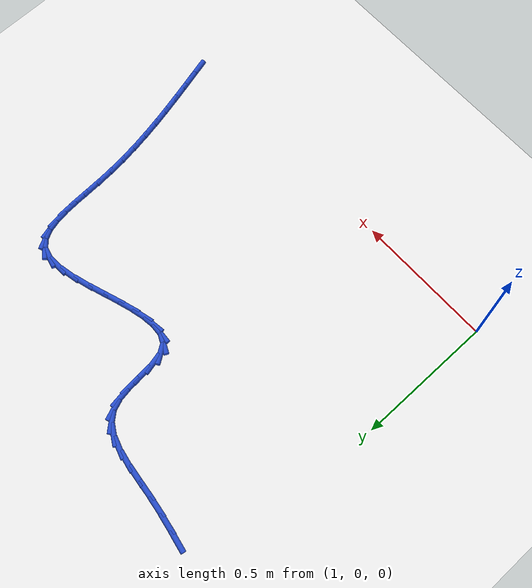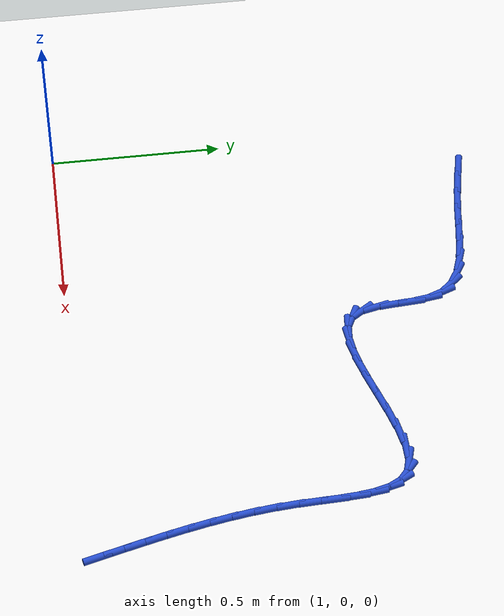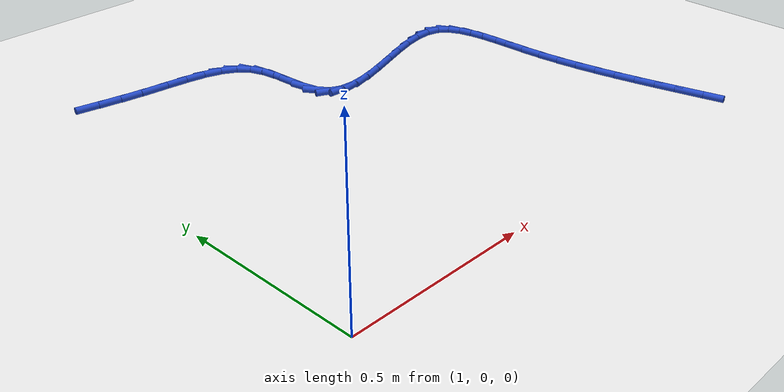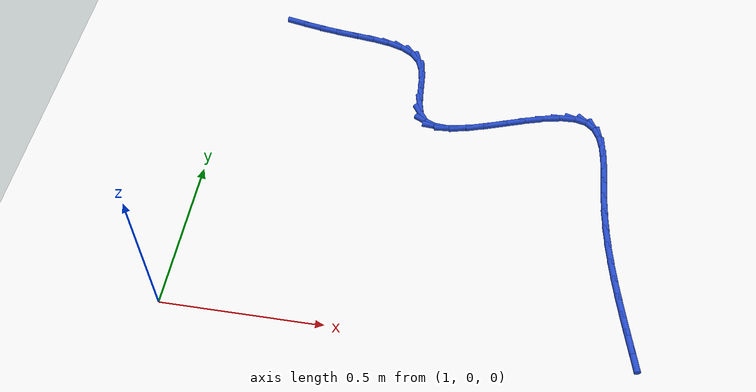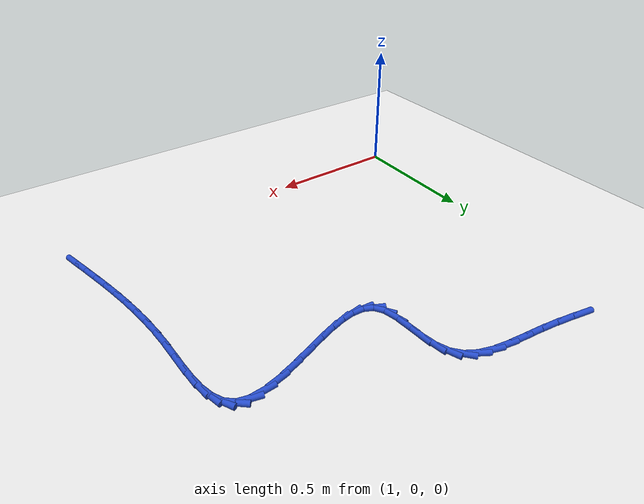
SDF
<sdf version="1.6">
 <world name="default">
  <model name="ground_plane">
   <static>1</static>
   <link name="link">
    <collision name="collision">
     <geometry><plane><normal>0 0 1</normal><size>100 100</size></plane></geometry>
     <surface><friction><ode><mu>100</mu><mu2>50</mu2></ode></friction></surface>
    </collision>
    <visual name="visual">
     <cast_shadows>0</cast_shadows>
     <geometry><plane><normal>0 0 1</normal><size>100 100</size></plane></geometry>
     <material>
      <script><uri>file://media/materials/scripts/gazebo.material</uri><name>Gazebo/WhiteGlow</name></script>
     </material>
    </visual>
   </link>
  </model>
  <model name="line">
   <link name="link_41">
    <pose>1.162145854196918 1.202758280286227 0.01 0 1.57 -0.1954814440411361</pose>
    <collision name="collision">
     <geometry><cylinder><radius>0.01</radius><length>0.08</length></cylinder></geometry>
    </collision>
    <visual name="visual">
     <material>
      <script><name>Gazebo/Blue</name><uri>file://media/materials/scripts/gazebo.material</uri></script>
     </material>
     <geometry><cylinder><radius>0.01</radius><length>0.08</length></cylinder></geometry>
    </visual>
   </link>
   <link name="link_42">
    <pose>1.2245502626891793 1.1904015784359347 0.01 0 1.57 -0.17212326842430617</pose>
    <collision name="collision">
     <geometry><cylinder><radius>0.01</radius><length>0.08</length></cylinder></geometry>
    </collision>
    <visual name="visual">
     <material>
      <script><name>Gazebo/Blue</name><uri>file://media/materials/scripts/gazebo.material</uri></script>
     </material>
     <geometry><cylinder><radius>0.01</radius><length>0.08</length></cylinder></geometry>
    </visual>
   </link>
   <link name="link_43">
    <pose>1.2866267174422656 1.1796099930541732 0.01 0 1.57 -0.13861630444678202</pose>
    <collision name="collision">
     <geometry><cylinder><radius>0.01</radius><length>0.08</length></cylinder></geometry>
    </collision>
    <visual name="visual">
     <material>
      <script><name>Gazebo/Blue</name><uri>file://media/materials/scripts/gazebo.material</uri></script>
     </material>
     <geometry><cylinder><radius>0.01</radius><length>0.08</length></cylinder></geometry>
    </visual>
   </link>
   <link name="link_44">
    <pose>1.3477766139102931 1.1710789101612555 0.01 0 1.57 -0.11695335978422734</pose>
    <collision name="collision">
     <geometry><cylinder><radius>0.01</radius><length>0.08</length></cylinder></geometry>
    </collision>
    <visual name="visual">
     <material>
      <script><name>Gazebo/Blue</name><uri>file://media/materials/scripts/gazebo.material</uri></script>
     </material>
     <geometry><cylinder><radius>0.01</radius><length>0.08</length></cylinder></geometry>
    </visual>
   </link>
   <link name="link_45">
    <pose>1.4069613404930985 1.1641253246729195 0.01 0 1.57 -0.1331339041285381</pose>
    <collision name="collision">
     <geometry><cylinder><radius>0.01</radius><length>0.08</length></cylinder></geometry>
    </collision>
    <visual name="visual">
     <material>
      <script><name>Gazebo/Blue</name><uri>file://media/materials/scripts/gazebo.material</uri></script>
     </material>
     <geometry><cylinder><radius>0.01</radius><length>0.08</length></cylinder></geometry>
    </visual>
   </link>
   <link name="link_46">
    <pose>1.4626938041079651 1.1566612929246938 0.01 0 1.57 -0.19684701664099774</pose>
    <collision name="collision">
     <geometry><cylinder><radius>0.01</radius><length>0.08</length></cylinder></geometry>
    </collision>
    <visual name="visual">
     <material>
      <script><name>Gazebo/Blue</name><uri>file://media/materials/scripts/gazebo.material</uri></script>
     </material>
     <geometry><cylinder><radius>0.01</radius><length>0.08</length></cylinder></geometry>
    </visual>
   </link>
   <link name="link_47">
    <pose>1.5134667362310386 1.146535668518596 0.01 0 1.57 -0.32519277962173165</pose>
    <collision name="collision">
     <geometry><cylinder><radius>0.01</radius><length>0.08</length></cylinder></geometry>
    </collision>
    <visual name="visual">
     <material>
      <script><name>Gazebo/Blue</name><uri>file://media/materials/scripts/gazebo.material</uri></script>
     </material>
     <geometry><cylinder><radius>0.01</radius><length>0.08</length></cylinder></geometry>
    </visual>
   </link>
   <link name="link_48">
    <pose>1.557772868338464 1.1315973050566435 0.01 0 1.57 -0.5425016413661428</pose>
    <collision name="collision">
     <geometry><cylinder><radius>0.01</radius><length>0.08</length></cylinder></geometry>
    </collision>
    <visual name="visual">
     <material>
      <script><name>Gazebo/Blue</name><uri>file://media/materials/scripts/gazebo.material</uri></script>
     </material>
     <geometry><cylinder><radius>0.01</radius><length>0.08</length></cylinder></geometry>
    </visual>
   </link>
   <link name="link_49">
    <pose>1.5941049319063882 1.1096950561408547 0.01 0 1.57 -0.8572751255862286</pose>
    <collision name="collision">
     <geometry><cylinder><radius>0.01</radius><length>0.08</length></cylinder></geometry>
    </collision>
    <visual name="visual">
     <material>
      <script><name>Gazebo/Blue</name><uri>file://media/materials/scripts/gazebo.material</uri></script>
     </material>
     <geometry><cylinder><radius>0.01</radius><length>0.08</length></cylinder></geometry>
    </visual>
   </link>
   <link name="link_50">
    <pose>1.6209556584109568 1.0786777753732462 0.01 0 1.57 -1.203652902772793</pose>
    <collision name="collision">
     <geometry><cylinder><radius>0.01</radius><length>0.08</length></cylinder></geometry>
    </collision>
    <visual name="visual">
     <material>
      <script><name>Gazebo/Blue</name><uri>file://media/materials/scripts/gazebo.material</uri></script>
     </material>
     <geometry><cylinder><radius>0.01</radius><length>0.08</length></cylinder></geometry>
    </visual>
   </link>
   <link name="link_51">
    <pose>1.6370884244367263 1.0367287763948025 0.01 0 1.57 -1.4203550233422715</pose>
    <collision name="collision">
     <geometry><cylinder><radius>0.01</radius><length>0.08</length></cylinder></geometry>
    </collision>
    <visual name="visual">
     <material>
      <script><name>Gazebo/Blue</name><uri>file://media/materials/scripts/gazebo.material</uri></script>
     </material>
     <geometry><cylinder><radius>0.01</radius><length>0.08</length></cylinder></geometry>
    </visual>
   </link>
   <link name="link_52">
    <pose>1.6447308638454186 0.9863124612087226 0.01 0 1.57 -1.5002855942289508</pose>
    <collision name="collision">
     <geometry><cylinder><radius>0.01</radius><length>0.08</length></cylinder></geometry>
    </collision>
    <visual name="visual">
     <material>
      <script><name>Gazebo/Blue</name><uri>file://media/materials/scripts/gazebo.material</uri></script>
     </material>
     <geometry><cylinder><radius>0.01</radius><length>0.08</length></cylinder></geometry>
    </visual>
   </link>
   <link name="link_53">
    <pose>1.6485065140761337 0.9328540612547847 0.01 0 1.57 -1.4812565143868008</pose>
    <collision name="collision">
     <geometry><cylinder><radius>0.01</radius><length>0.08</length></cylinder></geometry>
    </collision>
    <visual name="visual">
     <material>
      <script><name>Gazebo/Blue</name><uri>file://media/materials/scripts/gazebo.material</uri></script>
     </material>
     <geometry><cylinder><radius>0.01</radius><length>0.08</length></cylinder></geometry>
    </visual>
   </link>
   <link name="link_54">
    <pose>1.6530867377218688 0.8818379097349569 0.01 0 1.57 -1.3415219892443728</pose>
    <collision name="collision">
     <geometry><cylinder><radius>0.01</radius><length>0.08</length></cylinder></geometry>
    </collision>
    <visual name="visual">
     <material>
      <script><name>Gazebo/Blue</name><uri>file://media/materials/scripts/gazebo.material</uri></script>
     </material>
     <geometry><cylinder><radius>0.01</radius><length>0.08</length></cylinder></geometry>
    </visual>
   </link>
   <link name="link_55">
    <pose>1.6631428973756195 0.8387483398512072 0.01 0 1.57 -0.9790302515035469</pose>
    <collision name="collision">
     <geometry><cylinder><radius>0.01</radius><length>0.08</length></cylinder></geometry>
    </collision>
    <visual name="visual">
     <material>
      <script><name>Gazebo/Blue</name><uri>file://media/materials/scripts/gazebo.material</uri></script>
     </material>
     <geometry><cylinder><radius>0.01</radius><length>0.08</length></cylinder></geometry>
    </visual>
   </link>
   <link name="link_56">
    <pose>1.6832052617548636 0.8088988053950726 0.01 0 1.57 -0.450450820765415</pose>
    <collision name="collision">
     <geometry><cylinder><radius>0.01</radius><length>0.08</length></cylinder></geometry>
    </collision>
    <visual name="visual">
     <material>
      <script><name>Gazebo/Blue</name><uri>file://media/materials/scripts/gazebo.material</uri></script>
     </material>
     <geometry><cylinder><radius>0.01</radius><length>0.08</length></cylinder></geometry>
    </visual>
   </link>
   <link name="link_57">
    <pose>1.7145962808699982 0.7937177568762134 0.01 0 1.57 -0.07193934047617574</pose>
    <collision name="collision">
     <geometry><cylinder><radius>0.01</radius><length>0.08</length></cylinder></geometry>
    </collision>
    <visual name="visual">
     <material>
      <script><name>Gazebo/Blue</name><uri>file://media/materials/scripts/gazebo.material</uri></script>
     </material>
     <geometry><cylinder><radius>0.01</radius><length>0.08</length></cylinder></geometry>
    </visual>
   </link>
   <link name="link_58">
    <pose>1.7554511945861502 0.7907736006418647 0.01 0 1.57 0.1376922960731505</pose>
    <collision name="collision">
     <geometry><cylinder><radius>0.01</radius><length>0.08</length></cylinder></geometry>
    </collision>
    <visual name="visual">
     <material>
      <script><name>Gazebo/Blue</name><uri>file://media/materials/scripts/gazebo.material</uri></script>
     </material>
     <geometry><cylinder><radius>0.01</radius><length>0.08</length></cylinder></geometry>
    </visual>
   </link>
   <link name="link_59">
    <pose>1.8037682706589673 0.7974688555177253 0.01 0 1.57 0.2500965880433089</pose>
    <collision name="collision">
     <geometry><cylinder><radius>0.01</radius><length>0.08</length></cylinder></geometry>
    </collision>
    <visual name="visual">
     <material>
      <script><name>Gazebo/Blue</name><uri>file://media/materials/scripts/gazebo.material</uri></script>
     </material>
     <geometry><cylinder><radius>0.01</radius><length>0.08</length></cylinder></geometry>
    </visual>
   </link>
   <link name="link_60">
    <pose>1.8575457768440962 0.8112060403294927 0.01 0 1.57 0.3075785618250034</pose>
    <collision name="collision">
     <geometry><cylinder><radius>0.01</radius><length>0.08</length></cylinder></geometry>
    </collision>
    <visual name="visual">
     <material>
      <script><name>Gazebo/Blue</name><uri>file://media/materials/scripts/gazebo.material</uri></script>
     </material>
     <geometry><cylinder><radius>0.01</radius><length>0.08</length></cylinder></geometry>
    </visual>
   </link>
   <link name="link_61">
    <pose>1.9147819808971847 0.8293876739028656 0.01 0 1.57 0.3288517925598501</pose>
    <collision name="collision">
     <geometry><cylinder><radius>0.01</radius><length>0.08</length></cylinder></geometry>
    </collision>
    <visual name="visual">
     <material>
      <script><name>Gazebo/Blue</name><uri>file://media/materials/scripts/gazebo.material</uri></script>
     </material>
     <geometry><cylinder><radius>0.01</radius><length>0.08</length></cylinder></geometry>
    </visual>
   </link>
   <link name="link_62">
    <pose>1.9734751505738795 0.8494162750635413 0.01 0 1.57 0.3201289628542197</pose>
    <collision name="collision">
     <geometry><cylinder><radius>0.01</radius><length>0.08</length></cylinder></geometry>
    </collision>
    <visual name="visual">
     <material>
      <script><name>Gazebo/Blue</name><uri>file://media/materials/scripts/gazebo.material</uri></script>
     </material>
     <geometry><cylinder><radius>0.01</radius><length>0.08</length></cylinder></geometry>
    </visual>
   </link>
   <link name="link_63">
    <pose>2.031623553629828 0.8686943626372187 0.01 0 1.57 0.2790283708326772</pose>
    <collision name="collision">
     <geometry><cylinder><radius>0.01</radius><length>0.08</length></cylinder></geometry>
    </collision>
    <visual name="visual">
     <material>
      <script><name>Gazebo/Blue</name><uri>file://media/materials/scripts/gazebo.material</uri></script>
     </material>
     <geometry><cylinder><radius>0.01</radius><length>0.08</length></cylinder></geometry>
    </visual>
   </link>
   <link name="link_64">
    <pose>2.0872254578206757 0.8846244554495951 0.01 0 1.57 0.19313328222603268</pose>
    <collision name="collision">
     <geometry><cylinder><radius>0.01</radius><length>0.08</length></cylinder></geometry>
    </collision>
    <visual name="visual">
     <material>
      <script><name>Gazebo/Blue</name><uri>file://media/materials/scripts/gazebo.material</uri></script>
     </material>
     <geometry><cylinder><radius>0.01</radius><length>0.08</length></cylinder></geometry>
    </visual>
   </link>
   <link name="link_65">
    <pose>2.138279130902072 0.8946090723263689 0.01 0 1.57 0.03238282402943888</pose>
    <collision name="collision">
     <geometry><cylinder><radius>0.01</radius><length>0.08</length></cylinder></geometry>
    </collision>
    <visual name="visual">
     <material>
      <script><name>Gazebo/Blue</name><uri>file://media/materials/scripts/gazebo.material</uri></script>
     </material>
     <geometry><cylinder><radius>0.01</radius><length>0.08</length></cylinder></geometry>
    </visual>
   </link>
   <link name="link_66">
    <pose>2.182782840629663 0.8960507320932382 0.01 0 1.57 -0.26348068863071095</pose>
    <collision name="collision">
     <geometry><cylinder><radius>0.01</radius><length>0.08</length></cylinder></geometry>
    </collision>
    <visual name="visual">
     <material>
      <script><name>Gazebo/Blue</name><uri>file://media/materials/scripts/gazebo.material</uri></script>
     </material>
     <geometry><cylinder><radius>0.01</radius><length>0.08</length></cylinder></geometry>
    </visual>
   </link>
   <link name="link_67">
    <pose>2.2187353014389175 0.886352483197996 0.01 0 1.57 -0.7084009108994147</pose>
    <collision name="collision">
     <geometry><cylinder><radius>0.01</radius><length>0.08</length></cylinder></geometry>
    </collision>
    <visual name="visual">
     <material>
      <script><name>Gazebo/Blue</name><uri>file://media/materials/scripts/gazebo.material</uri></script>
     </material>
     <geometry><cylinder><radius>0.01</radius><length>0.08</length></cylinder></geometry>
    </visual>
   </link>
   <link name="link_68">
    <pose>2.2449546755423477 0.8638889819989137 0.01 0 1.57 -1.0864813360709111</pose>
    <collision name="collision">
     <geometry><cylinder><radius>0.01</radius><length>0.08</length></cylinder></geometry>
    </collision>
    <visual name="visual">
     <material>
      <script><name>Gazebo/Blue</name><uri>file://media/materials/scripts/gazebo.material</uri></script>
     </material>
     <geometry><cylinder><radius>0.01</radius><length>0.08</length></cylinder></geometry>
    </visual>
   </link>
   <link name="link_69">
    <pose>2.26277469311391 0.8300175590394426 0.01 0 1.57 -1.3172042974333016</pose>
    <collision name="collision">
     <geometry><cylinder><radius>0.01</radius><length>0.08</length></cylinder></geometry>
    </collision>
    <visual name="visual">
     <material>
      <script><name>Gazebo/Blue</name><uri>file://media/materials/scripts/gazebo.material</uri></script>
     </material>
     <geometry><cylinder><radius>0.01</radius><length>0.08</length></cylinder></geometry>
    </visual>
   </link>
   <link name="link_70">
    <pose>2.274010192489774 0.7866659881655779 0.01 0 1.57 -1.4444528978372257</pose>
    <collision name="collision">
     <geometry><cylinder><radius>0.01</radius><length>0.08</length></cylinder></geometry>
    </collision>
    <visual name="visual">
     <material>
      <script><name>Gazebo/Blue</name><uri>file://media/materials/scripts/gazebo.material</uri></script>
     </material>
     <geometry><cylinder><radius>0.01</radius><length>0.08</length></cylinder></geometry>
    </visual>
   </link>
   <link name="link_71">
    <pose>2.2804760120061047 0.7357620432233134 0.01 0 1.57 -1.508766183994036</pose>
    <collision name="collision">
     <geometry><cylinder><radius>0.01</radius><length>0.08</length></cylinder></geometry>
    </collision>
    <visual name="visual">
     <material>
      <script><name>Gazebo/Blue</name><uri>file://media/materials/scripts/gazebo.material</uri></script>
     </material>
     <geometry><cylinder><radius>0.01</radius><length>0.08</length></cylinder></geometry>
    </visual>
   </link>
   <link name="link_72">
    <pose>2.283986989999071 0.679233498058645 0.01 0 1.57 -1.5314482749180152</pose>
    <collision name="collision">
     <geometry><cylinder><radius>0.01</radius><length>0.08</length></cylinder></geometry>
    </collision>
    <visual name="visual">
     <material>
      <script><name>Gazebo/Blue</name><uri>file://media/materials/scripts/gazebo.material</uri></script>
     </material>
     <geometry><cylinder><radius>0.01</radius><length>0.08</length></cylinder></geometry>
    </visual>
   </link>
   <link name="link_73">
    <pose>2.286357964804838 0.6190081265175664 0.01 0 1.57 -1.5217054143452202</pose>
    <collision name="collision">
     <geometry><cylinder><radius>0.01</radius><length>0.08</length></cylinder></geometry>
    </collision>
    <visual name="visual">
     <material>
      <script><name>Gazebo/Blue</name><uri>file://media/materials/scripts/gazebo.material</uri></script>
     </material>
     <geometry><cylinder><radius>0.01</radius><length>0.08</length></cylinder></geometry>
    </visual>
   </link>
   <link name="link_74">
    <pose>2.2894037747595744 0.5570137024460724 0.01 0 1.57 -1.485653239219659</pose>
    <collision name="collision">
     <geometry><cylinder><radius>0.01</radius><length>0.08</length></cylinder></geometry>
    </collision>
    <visual name="visual">
     <material>
      <script><name>Gazebo/Blue</name><uri>file://media/materials/scripts/gazebo.material</uri></script>
     </material>
     <geometry><cylinder><radius>0.01</radius><length>0.08</length></cylinder></geometry>
    </visual>
   </link>
   <link name="link_75">
    <pose>2.2946986783932077 0.49497575274910616 0.01 0 1.57 -1.4463148212602277</pose>
    <collision name="collision">
     <geometry><cylinder><radius>0.01</radius><length>0.08</length></cylinder></geometry>
    </collision>
    <visual name="visual">
     <material>
      <script><name>Gazebo/Blue</name><uri>file://media/materials/scripts/gazebo.material</uri></script>
     </material>
     <geometry><cylinder><radius>0.01</radius><length>0.08</length></cylinder></geometry>
    </visual>
   </link>
   <link name="link_76">
    <pose>2.3023999782266698 0.4334286194898496 0.01 0 1.57 -1.4122221046289114</pose>
    <collision name="collision">
     <geometry><cylinder><radius>0.01</radius><length>0.08</length></cylinder></geometry>
    </collision>
    <visual name="visual">
     <material>
      <script><name>Gazebo/Blue</name><uri>file://media/materials/scripts/gazebo.material</uri></script>
     </material>
     <geometry><cylinder><radius>0.01</radius><length>0.08</length></cylinder></geometry>
    </visual>
   </link>
   <link name="link_77">
    <pose>2.3121479687305984 0.3724720143345878 0.01 0 1.57 -1.3832988094223644</pose>
    <collision name="collision">
     <geometry><cylinder><radius>0.01</radius><length>0.08</length></cylinder></geometry>
    </collision>
    <visual name="visual">
     <material>
      <script><name>Gazebo/Blue</name><uri>file://media/materials/scripts/gazebo.material</uri></script>
     </material>
     <geometry><cylinder><radius>0.01</radius><length>0.08</length></cylinder></geometry>
    </visual>
   </link>
   <link name="link_78">
    <pose>2.323582188122727 0.3122050131945148 0.01 0 1.57 -1.359467800845129</pose>
    <collision name="collision">
     <geometry><cylinder><radius>0.01</radius><length>0.08</length></cylinder></geometry>
    </collision>
    <visual name="visual">
     <material>
      <script><name>Gazebo/Blue</name><uri>file://media/materials/scripts/gazebo.material</uri></script>
     </material>
     <geometry><cylinder><radius>0.01</radius><length>0.08</length></cylinder></geometry>
    </visual>
   </link>
   <link name="link_79">
    <pose>2.3363421746207864 0.25272669198082154 0.01 0 1.57 -1.3406879225619641</pose>
    <collision name="collision">
     <geometry><cylinder><radius>0.01</radius><length>0.08</length></cylinder></geometry>
    </collision>
    <visual name="visual">
     <material>
      <script><name>Gazebo/Blue</name><uri>file://media/materials/scripts/gazebo.material</uri></script>
     </material>
     <geometry><cylinder><radius>0.01</radius><length>0.08</length></cylinder></geometry>
    </visual>
   </link>
   <link name="link_80">
    <pose>2.3500674664425105 0.1941361266047018 0.01 0 1.57 -1.3269747535683292</pose>
    <collision name="collision">
     <geometry><cylinder><radius>0.01</radius><length>0.08</length></cylinder></geometry>
    </collision>
    <visual name="visual">
     <material>
      <script><name>Gazebo/Blue</name><uri>file://media/materials/scripts/gazebo.material</uri></script>
     </material>
     <geometry><cylinder><radius>0.01</radius><length>0.08</length></cylinder></geometry>
    </visual>
   </link>
   <link name="link_81">
    <pose>2.3643976018056287 0.13653239297734734 0.01 0 1.57 -1.3184200282570584</pose>
    <collision name="collision">
     <geometry><cylinder><radius>0.01</radius><length>0.08</length></cylinder></geometry>
    </collision>
    <visual name="visual">
     <material>
      <script><name>Gazebo/Blue</name><uri>file://media/materials/scripts/gazebo.material</uri></script>
     </material>
     <geometry><cylinder><radius>0.01</radius><length>0.08</length></cylinder></geometry>
    </visual>
   </link>
   <link name="link_82">
    <pose>2.3789721189278747 0.08001456700995037 0.01 0 1.57 -1.31521155537441</pose>
    <collision name="collision">
     <geometry><cylinder><radius>0.01</radius><length>0.08</length></cylinder></geometry>
    </collision>
    <visual name="visual">
     <material>
      <script><name>Gazebo/Blue</name><uri>file://media/materials/scripts/gazebo.material</uri></script>
     </material>
     <geometry><cylinder><radius>0.01</radius><length>0.08</length></cylinder></geometry>
    </visual>
   </link>
   <link name="link_83">
    <pose>2.3934305560269804 0.024681724613704246 0.01 0 1.57 -1.3176554393028945</pose>
    <collision name="collision">
     <geometry><cylinder><radius>0.01</radius><length>0.08</length></cylinder></geometry>
    </collision>
    <visual name="visual">
     <material>
      <script><name>Gazebo/Blue</name><uri>file://media/materials/scripts/gazebo.material</uri></script>
     </material>
     <geometry><cylinder><radius>0.01</radius><length>0.08</length></cylinder></geometry>
    </visual>
   </link>
  </model>
 </world>
</sdf>
